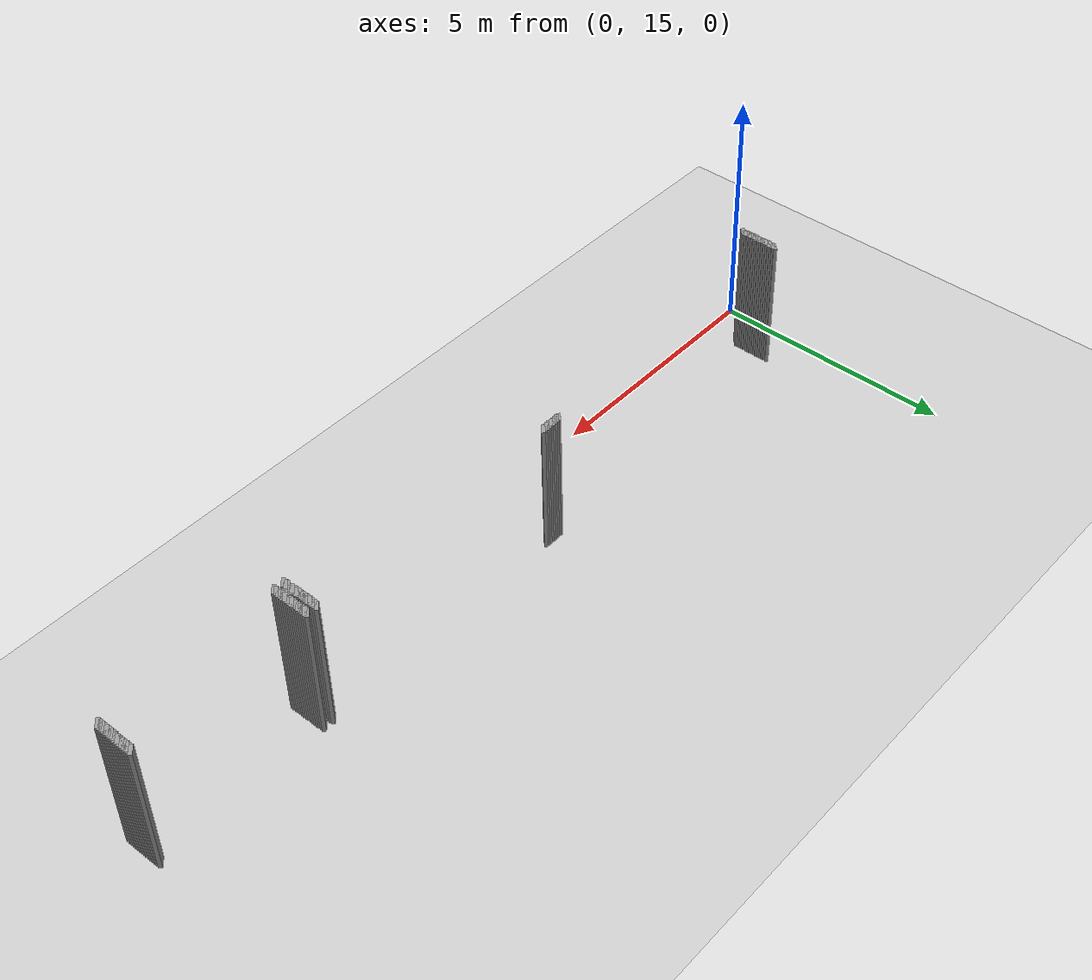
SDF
<sdf version="1.5">
 <world name="default">
  <include><uri>model://ground_plane</uri></include>
  <include><uri>model://sun</uri></include>
  <model name="grey_wall_522">
   <static>1</static>
   <link name="link">
    <pose>7.1000000000000005 16.5  1.4 0 0 -0.7853981633974128</pose>
    <collision name="collision">
     <geometry><box><size>0.07071067811865325 .2  2.8</size></box></geometry>
    </collision>
    <visual name="visual">
     <cast_shadows>0</cast_shadows>
     <geometry><box><size>0.07071067811865325 .2  2.8</size></box></geometry>
     <material>
      <script>
       <uri>model://grey_wall/materials/scripts</uri>
       <uri>model://grey_wall/materials/textures</uri>
       <name>vrc/grey_wall</name>
      </script>
     </material>
    </visual>
   </link>
  </model>
  <model name="grey_wall_523">
   <static>1</static>
   <link name="link">
    <pose>7.15 16.5  1.4 0 0 -0.7853981633974128</pose>
    <collision name="collision">
     <geometry><box><size>0.07071067811865325 .2  2.8</size></box></geometry>
    </collision>
    <visual name="visual">
     <cast_shadows>0</cast_shadows>
     <geometry><box><size>0.07071067811865325 .2  2.8</size></box></geometry>
     <material>
      <script>
       <uri>model://grey_wall/materials/scripts</uri>
       <uri>model://grey_wall/materials/textures</uri>
       <name>vrc/grey_wall</name>
      </script>
     </material>
    </visual>
   </link>
  </model>
  <model name="grey_wall_524">
   <static>1</static>
   <link name="link">
    <pose>7.2 16.5  1.4 0 0 -0.7853981633974128</pose>
    <collision name="collision">
     <geometry><box><size>0.07071067811865325 .2  2.8</size></box></geometry>
    </collision>
    <visual name="visual">
     <cast_shadows>0</cast_shadows>
     <geometry><box><size>0.07071067811865325 .2  2.8</size></box></geometry>
     <material>
      <script>
       <uri>model://grey_wall/materials/scripts</uri>
       <uri>model://grey_wall/materials/textures</uri>
       <name>vrc/grey_wall</name>
      </script>
     </material>
    </visual>
   </link>
  </model>
  <model name="grey_wall_525">
   <static>1</static>
   <link name="link">
    <pose>7.25 16.5  1.4 0 0 -0.7853981633974128</pose>
    <collision name="collision">
     <geometry><box><size>0.07071067811865325 .2  2.8</size></box></geometry>
    </collision>
    <visual name="visual">
     <cast_shadows>0</cast_shadows>
     <geometry><box><size>0.07071067811865325 .2  2.8</size></box></geometry>
     <material>
      <script>
       <uri>model://grey_wall/materials/scripts</uri>
       <uri>model://grey_wall/materials/textures</uri>
       <name>vrc/grey_wall</name>
      </script>
     </material>
    </visual>
   </link>
  </model>
  <model name="grey_wall_526">
   <static>1</static>
   <link name="link">
    <pose>7.300000000000001 16.5  1.4 0 0 -0.7853981633974128</pose>
    <collision name="collision">
     <geometry><box><size>0.07071067811865325 .2  2.8</size></box></geometry>
    </collision>
    <visual name="visual">
     <cast_shadows>0</cast_shadows>
     <geometry><box><size>0.07071067811865325 .2  2.8</size></box></geometry>
     <material>
      <script>
       <uri>model://grey_wall/materials/scripts</uri>
       <uri>model://grey_wall/materials/textures</uri>
       <name>vrc/grey_wall</name>
      </script>
     </material>
    </visual>
   </link>
  </model>
  <model name="grey_wall_527">
   <static>1</static>
   <link name="link">
    <pose>7.3500000000000005 16.5  1.4 0 0 -0.7853981633974128</pose>
    <collision name="collision">
     <geometry><box><size>0.07071067811865325 .2  2.8</size></box></geometry>
    </collision>
    <visual name="visual">
     <cast_shadows>0</cast_shadows>
     <geometry><box><size>0.07071067811865325 .2  2.8</size></box></geometry>
     <material>
      <script>
       <uri>model://grey_wall/materials/scripts</uri>
       <uri>model://grey_wall/materials/textures</uri>
       <name>vrc/grey_wall</name>
      </script>
     </material>
    </visual>
   </link>
  </model>
  <model name="grey_wall_528">
   <static>1</static>
   <link name="link">
    <pose>7.4 16.5  1.4 0 0 -0.7853981633974128</pose>
    <collision name="collision">
     <geometry><box><size>0.07071067811865325 .2  2.8</size></box></geometry>
    </collision>
    <visual name="visual">
     <cast_shadows>0</cast_shadows>
     <geometry><box><size>0.07071067811865325 .2  2.8</size></box></geometry>
     <material>
      <script>
       <uri>model://grey_wall/materials/scripts</uri>
       <uri>model://grey_wall/materials/textures</uri>
       <name>vrc/grey_wall</name>
      </script>
     </material>
    </visual>
   </link>
  </model>
  <model name="grey_wall_529">
   <static>1</static>
   <link name="link">
    <pose>7.45 16.5  1.4 0 0 -0.7853981633974128</pose>
    <collision name="collision">
     <geometry><box><size>0.07071067811865325 .2  2.8</size></box></geometry>
    </collision>
    <visual name="visual">
     <cast_shadows>0</cast_shadows>
     <geometry><box><size>0.07071067811865325 .2  2.8</size></box></geometry>
     <material>
      <script>
       <uri>model://grey_wall/materials/scripts</uri>
       <uri>model://grey_wall/materials/textures</uri>
       <name>vrc/grey_wall</name>
      </script>
     </material>
    </visual>
   </link>
  </model>
  <model name="grey_wall_530">
   <static>1</static>
   <link name="link">
    <pose>7.5 16.5  1.4 0 0 -0.7853981633974128</pose>
    <collision name="collision">
     <geometry><box><size>0.07071067811865325 .2  2.8</size></box></geometry>
    </collision>
    <visual name="visual">
     <cast_shadows>0</cast_shadows>
     <geometry><box><size>0.07071067811865325 .2  2.8</size></box></geometry>
     <material>
      <script>
       <uri>model://grey_wall/materials/scripts</uri>
       <uri>model://grey_wall/materials/textures</uri>
       <name>vrc/grey_wall</name>
      </script>
     </material>
    </visual>
   </link>
  </model>
  <model name="grey_wall_531">
   <static>1</static>
   <link name="link">
    <pose>12.8 16.5  1.4 0 0 -0.7853981633974128</pose>
    <collision name="collision">
     <geometry><box><size>0.07071067811865325 .2  2.8</size></box></geometry>
    </collision>
    <visual name="visual">
     <cast_shadows>0</cast_shadows>
     <geometry><box><size>0.07071067811865325 .2  2.8</size></box></geometry>
     <material>
      <script>
       <uri>model://grey_wall/materials/scripts</uri>
       <uri>model://grey_wall/materials/textures</uri>
       <name>vrc/grey_wall</name>
      </script>
     </material>
    </visual>
   </link>
  </model>
  <model name="grey_wall_532">
   <static>1</static>
   <link name="link">
    <pose>13.0 16.5  1.4 0 0 -0.7853981633974128</pose>
    <collision name="collision">
     <geometry><box><size>0.07071067811865325 .2  2.8</size></box></geometry>
    </collision>
    <visual name="visual">
     <cast_shadows>0</cast_shadows>
     <geometry><box><size>0.07071067811865325 .2  2.8</size></box></geometry>
     <material>
      <script>
       <uri>model://grey_wall/materials/scripts</uri>
       <uri>model://grey_wall/materials/textures</uri>
       <name>vrc/grey_wall</name>
      </script>
     </material>
    </visual>
   </link>
  </model>
  <model name="grey_wall_533">
   <static>1</static>
   <link name="link">
    <pose>16.45 16.5  1.4 0 0 -0.7853981633974483</pose>
    <collision name="collision">
     <geometry><box><size>0.07071067811865074 .2  2.8</size></box></geometry>
    </collision>
    <visual name="visual">
     <cast_shadows>0</cast_shadows>
     <geometry><box><size>0.07071067811865074 .2  2.8</size></box></geometry>
     <material>
      <script>
       <uri>model://grey_wall/materials/scripts</uri>
       <uri>model://grey_wall/materials/textures</uri>
       <name>vrc/grey_wall</name>
      </script>
     </material>
    </visual>
   </link>
  </model>
  <model name="grey_wall_534">
   <static>1</static>
   <link name="link">
    <pose>0.75 16.45  1.4 0 0 -0.7853981633974194</pose>
    <collision name="collision">
     <geometry><box><size>0.07071067811865277 .2  2.8</size></box></geometry>
    </collision>
    <visual name="visual">
     <cast_shadows>0</cast_shadows>
     <geometry><box><size>0.07071067811865277 .2  2.8</size></box></geometry>
     <material>
      <script>
       <uri>model://grey_wall/materials/scripts</uri>
       <uri>model://grey_wall/materials/textures</uri>
       <name>vrc/grey_wall</name>
      </script>
     </material>
    </visual>
   </link>
  </model>
  <model name="grey_wall_535">
   <static>1</static>
   <link name="link">
    <pose>12.8 16.45  1.4 0 0 -0.7853981633974128</pose>
    <collision name="collision">
     <geometry><box><size>0.07071067811865325 .2  2.8</size></box></geometry>
    </collision>
    <visual name="visual">
     <cast_shadows>0</cast_shadows>
     <geometry><box><size>0.07071067811865325 .2  2.8</size></box></geometry>
     <material>
      <script>
       <uri>model://grey_wall/materials/scripts</uri>
       <uri>model://grey_wall/materials/textures</uri>
       <name>vrc/grey_wall</name>
      </script>
     </material>
    </visual>
   </link>
  </model>
  <model name="grey_wall_536">
   <static>1</static>
   <link name="link">
    <pose>13.0 16.45  1.4 0 0 -0.7853981633974128</pose>
    <collision name="collision">
     <geometry><box><size>0.07071067811865325 .2  2.8</size></box></geometry>
    </collision>
    <visual name="visual">
     <cast_shadows>0</cast_shadows>
     <geometry><box><size>0.07071067811865325 .2  2.8</size></box></geometry>
     <material>
      <script>
       <uri>model://grey_wall/materials/scripts</uri>
       <uri>model://grey_wall/materials/textures</uri>
       <name>vrc/grey_wall</name>
      </script>
     </material>
    </visual>
   </link>
  </model>
  <model name="grey_wall_537">
   <static>1</static>
   <link name="link">
    <pose>16.45 16.45  1.4 0 0 -0.7853981633974483</pose>
    <collision name="collision">
     <geometry><box><size>0.07071067811865074 .2  2.8</size></box></geometry>
    </collision>
    <visual name="visual">
     <cast_shadows>0</cast_shadows>
     <geometry><box><size>0.07071067811865074 .2  2.8</size></box></geometry>
     <material>
      <script>
       <uri>model://grey_wall/materials/scripts</uri>
       <uri>model://grey_wall/materials/textures</uri>
       <name>vrc/grey_wall</name>
      </script>
     </material>
    </visual>
   </link>
  </model>
  <model name="grey_wall_538">
   <static>1</static>
   <link name="link">
    <pose>0.75 16.400000000000002  1.4 0 0 -0.7853981633974194</pose>
    <collision name="collision">
     <geometry><box><size>0.07071067811865277 .2  2.8</size></box></geometry>
    </collision>
    <visual name="visual">
     <cast_shadows>0</cast_shadows>
     <geometry><box><size>0.07071067811865277 .2  2.8</size></box></geometry>
     <material>
      <script>
       <uri>model://grey_wall/materials/scripts</uri>
       <uri>model://grey_wall/materials/textures</uri>
       <name>vrc/grey_wall</name>
      </script>
     </material>
    </visual>
   </link>
  </model>
  <model name="grey_wall_539">
   <static>1</static>
   <link name="link">
    <pose>12.8 16.400000000000002  1.4 0 0 -0.7853981633974128</pose>
    <collision name="collision">
     <geometry><box><size>0.07071067811865325 .2  2.8</size></box></geometry>
    </collision>
    <visual name="visual">
     <cast_shadows>0</cast_shadows>
     <geometry><box><size>0.07071067811865325 .2  2.8</size></box></geometry>
     <material>
      <script>
       <uri>model://grey_wall/materials/scripts</uri>
       <uri>model://grey_wall/materials/textures</uri>
       <name>vrc/grey_wall</name>
      </script>
     </material>
    </visual>
   </link>
  </model>
  <model name="grey_wall_540">
   <static>1</static>
   <link name="link">
    <pose>13.0 16.400000000000002  1.4 0 0 -0.7853981633974128</pose>
    <collision name="collision">
     <geometry><box><size>0.07071067811865325 .2  2.8</size></box></geometry>
    </collision>
    <visual name="visual">
     <cast_shadows>0</cast_shadows>
     <geometry><box><size>0.07071067811865325 .2  2.8</size></box></geometry>
     <material>
      <script>
       <uri>model://grey_wall/materials/scripts</uri>
       <uri>model://grey_wall/materials/textures</uri>
       <name>vrc/grey_wall</name>
      </script>
     </material>
    </visual>
   </link>
  </model>
  <model name="grey_wall_541">
   <static>1</static>
   <link name="link">
    <pose>16.45 16.400000000000002  1.4 0 0 -0.7853981633974483</pose>
    <collision name="collision">
     <geometry><box><size>0.07071067811865074 .2  2.8</size></box></geometry>
    </collision>
    <visual name="visual">
     <cast_shadows>0</cast_shadows>
     <geometry><box><size>0.07071067811865074 .2  2.8</size></box></geometry>
     <material>
      <script>
       <uri>model://grey_wall/materials/scripts</uri>
       <uri>model://grey_wall/materials/textures</uri>
       <name>vrc/grey_wall</name>
      </script>
     </material>
    </visual>
   </link>
  </model>
  <model name="grey_wall_542">
   <static>1</static>
   <link name="link">
    <pose>0.75 16.35  1.4 0 0 -0.7853981633974194</pose>
    <collision name="collision">
     <geometry><box><size>0.07071067811865277 .2  2.8</size></box></geometry>
    </collision>
    <visual name="visual">
     <cast_shadows>0</cast_shadows>
     <geometry><box><size>0.07071067811865277 .2  2.8</size></box></geometry>
     <material>
      <script>
       <uri>model://grey_wall/materials/scripts</uri>
       <uri>model://grey_wall/materials/textures</uri>
       <name>vrc/grey_wall</name>
      </script>
     </material>
    </visual>
   </link>
  </model>
  <model name="grey_wall_543">
   <static>1</static>
   <link name="link">
    <pose>12.8 16.35  1.4 0 0 -0.7853981633974128</pose>
    <collision name="collision">
     <geometry><box><size>0.07071067811865325 .2  2.8</size></box></geometry>
    </collision>
    <visual name="visual">
     <cast_shadows>0</cast_shadows>
     <geometry><box><size>0.07071067811865325 .2  2.8</size></box></geometry>
     <material>
      <script>
       <uri>model://grey_wall/materials/scripts</uri>
       <uri>model://grey_wall/materials/textures</uri>
       <name>vrc/grey_wall</name>
      </script>
     </material>
    </visual>
   </link>
  </model>
  <model name="grey_wall_544">
   <static>1</static>
   <link name="link">
    <pose>13.0 16.35  1.4 0 0 -0.7853981633974128</pose>
    <collision name="collision">
     <geometry><box><size>0.07071067811865325 .2  2.8</size></box></geometry>
    </collision>
    <visual name="visual">
     <cast_shadows>0</cast_shadows>
     <geometry><box><size>0.07071067811865325 .2  2.8</size></box></geometry>
     <material>
      <script>
       <uri>model://grey_wall/materials/scripts</uri>
       <uri>model://grey_wall/materials/textures</uri>
       <name>vrc/grey_wall</name>
      </script>
     </material>
    </visual>
   </link>
  </model>
  <model name="grey_wall_545">
   <static>1</static>
   <link name="link">
    <pose>16.45 16.35  1.4 0 0 -0.7853981633974483</pose>
    <collision name="collision">
     <geometry><box><size>0.07071067811865074 .2  2.8</size></box></geometry>
    </collision>
    <visual name="visual">
     <cast_shadows>0</cast_shadows>
     <geometry><box><size>0.07071067811865074 .2  2.8</size></box></geometry>
     <material>
      <script>
       <uri>model://grey_wall/materials/scripts</uri>
       <uri>model://grey_wall/materials/textures</uri>
       <name>vrc/grey_wall</name>
      </script>
     </material>
    </visual>
   </link>
  </model>
  <model name="grey_wall_546">
   <static>1</static>
   <link name="link">
    <pose>0.75 16.3  1.4 0 0 -0.7853981633974194</pose>
    <collision name="collision">
     <geometry><box><size>0.07071067811865277 .2  2.8</size></box></geometry>
    </collision>
    <visual name="visual">
     <cast_shadows>0</cast_shadows>
     <geometry><box><size>0.07071067811865277 .2  2.8</size></box></geometry>
     <material>
      <script>
       <uri>model://grey_wall/materials/scripts</uri>
       <uri>model://grey_wall/materials/textures</uri>
       <name>vrc/grey_wall</name>
      </script>
     </material>
    </visual>
   </link>
  </model>
  <model name="grey_wall_547">
   <static>1</static>
   <link name="link">
    <pose>12.8 16.3  1.4 0 0 -0.7853981633974128</pose>
    <collision name="collision">
     <geometry><box><size>0.07071067811865325 .2  2.8</size></box></geometry>
    </collision>
    <visual name="visual">
     <cast_shadows>0</cast_shadows>
     <geometry><box><size>0.07071067811865325 .2  2.8</size></box></geometry>
     <material>
      <script>
       <uri>model://grey_wall/materials/scripts</uri>
       <uri>model://grey_wall/materials/textures</uri>
       <name>vrc/grey_wall</name>
      </script>
     </material>
    </visual>
   </link>
  </model>
  <model name="grey_wall_548">
   <static>1</static>
   <link name="link">
    <pose>13.0 16.3  1.4 0 0 -0.7853981633974128</pose>
    <collision name="collision">
     <geometry><box><size>0.07071067811865325 .2  2.8</size></box></geometry>
    </collision>
    <visual name="visual">
     <cast_shadows>0</cast_shadows>
     <geometry><box><size>0.07071067811865325 .2  2.8</size></box></geometry>
     <material>
      <script>
       <uri>model://grey_wall/materials/scripts</uri>
       <uri>model://grey_wall/materials/textures</uri>
       <name>vrc/grey_wall</name>
      </script>
     </material>
    </visual>
   </link>
  </model>
  <model name="grey_wall_549">
   <static>1</static>
   <link name="link">
    <pose>16.45 16.3  1.4 0 0 -0.7853981633974483</pose>
    <collision name="collision">
     <geometry><box><size>0.07071067811865074 .2  2.8</size></box></geometry>
    </collision>
    <visual name="visual">
     <cast_shadows>0</cast_shadows>
     <geometry><box><size>0.07071067811865074 .2  2.8</size></box></geometry>
     <material>
      <script>
       <uri>model://grey_wall/materials/scripts</uri>
       <uri>model://grey_wall/materials/textures</uri>
       <name>vrc/grey_wall</name>
      </script>
     </material>
    </visual>
   </link>
  </model>
  <model name="grey_wall_550">
   <static>1</static>
   <link name="link">
    <pose>0.75 16.25  1.4 0 0 -0.7853981633974194</pose>
    <collision name="collision">
     <geometry><box><size>0.07071067811865277 .2  2.8</size></box></geometry>
    </collision>
    <visual name="visual">
     <cast_shadows>0</cast_shadows>
     <geometry><box><size>0.07071067811865277 .2  2.8</size></box></geometry>
     <material>
      <script>
       <uri>model://grey_wall/materials/scripts</uri>
       <uri>model://grey_wall/materials/textures</uri>
       <name>vrc/grey_wall</name>
      </script>
     </material>
    </visual>
   </link>
  </model>
  <model name="grey_wall_551">
   <static>1</static>
   <link name="link">
    <pose>12.8 16.25  1.4 0 0 -0.7853981633974128</pose>
    <collision name="collision">
     <geometry><box><size>0.07071067811865325 .2  2.8</size></box></geometry>
    </collision>
    <visual name="visual">
     <cast_shadows>0</cast_shadows>
     <geometry><box><size>0.07071067811865325 .2  2.8</size></box></geometry>
     <material>
      <script>
       <uri>model://grey_wall/materials/scripts</uri>
       <uri>model://grey_wall/materials/textures</uri>
       <name>vrc/grey_wall</name>
      </script>
     </material>
    </visual>
   </link>
  </model>
  <model name="grey_wall_552">
   <static>1</static>
   <link name="link">
    <pose>13.0 16.25  1.4 0 0 -0.7853981633974128</pose>
    <collision name="collision">
     <geometry><box><size>0.07071067811865325 .2  2.8</size></box></geometry>
    </collision>
    <visual name="visual">
     <cast_shadows>0</cast_shadows>
     <geometry><box><size>0.07071067811865325 .2  2.8</size></box></geometry>
     <material>
      <script>
       <uri>model://grey_wall/materials/scripts</uri>
       <uri>model://grey_wall/materials/textures</uri>
       <name>vrc/grey_wall</name>
      </script>
     </material>
    </visual>
   </link>
  </model>
  <model name="grey_wall_553">
   <static>1</static>
   <link name="link">
    <pose>16.45 16.25  1.4 0 0 -0.7853981633974483</pose>
    <collision name="collision">
     <geometry><box><size>0.07071067811865074 .2  2.8</size></box></geometry>
    </collision>
    <visual name="visual">
     <cast_shadows>0</cast_shadows>
     <geometry><box><size>0.07071067811865074 .2  2.8</size></box></geometry>
     <material>
      <script>
       <uri>model://grey_wall/materials/scripts</uri>
       <uri>model://grey_wall/materials/textures</uri>
       <name>vrc/grey_wall</name>
      </script>
     </material>
    </visual>
   </link>
  </model>
  <model name="grey_wall_554">
   <static>1</static>
   <link name="link">
    <pose>0.75 16.2  1.4 0 0 -0.7853981633974194</pose>
    <collision name="collision">
     <geometry><box><size>0.07071067811865277 .2  2.8</size></box></geometry>
    </collision>
    <visual name="visual">
     <cast_shadows>0</cast_shadows>
     <geometry><box><size>0.07071067811865277 .2  2.8</size></box></geometry>
     <material>
      <script>
       <uri>model://grey_wall/materials/scripts</uri>
       <uri>model://grey_wall/materials/textures</uri>
       <name>vrc/grey_wall</name>
      </script>
     </material>
    </visual>
   </link>
  </model>
  <model name="grey_wall_555">
   <static>1</static>
   <link name="link">
    <pose>12.8 16.2  1.4 0 0 -0.7853981633974128</pose>
    <collision name="collision">
     <geometry><box><size>0.07071067811865325 .2  2.8</size></box></geometry>
    </collision>
    <visual name="visual">
     <cast_shadows>0</cast_shadows>
     <geometry><box><size>0.07071067811865325 .2  2.8</size></box></geometry>
     <material>
      <script>
       <uri>model://grey_wall/materials/scripts</uri>
       <uri>model://grey_wall/materials/textures</uri>
       <name>vrc/grey_wall</name>
      </script>
     </material>
    </visual>
   </link>
  </model>
  <model name="grey_wall_556">
   <static>1</static>
   <link name="link">
    <pose>13.0 16.2  1.4 0 0 -0.7853981633974128</pose>
    <collision name="collision">
     <geometry><box><size>0.07071067811865325 .2  2.8</size></box></geometry>
    </collision>
    <visual name="visual">
     <cast_shadows>0</cast_shadows>
     <geometry><box><size>0.07071067811865325 .2  2.8</size></box></geometry>
     <material>
      <script>
       <uri>model://grey_wall/materials/scripts</uri>
       <uri>model://grey_wall/materials/textures</uri>
       <name>vrc/grey_wall</name>
      </script>
     </material>
    </visual>
   </link>
  </model>
  <model name="grey_wall_557">
   <static>1</static>
   <link name="link">
    <pose>16.45 16.2  1.4 0 0 -0.7853981633974483</pose>
    <collision name="collision">
     <geometry><box><size>0.07071067811865074 .2  2.8</size></box></geometry>
    </collision>
    <visual name="visual">
     <cast_shadows>0</cast_shadows>
     <geometry><box><size>0.07071067811865074 .2  2.8</size></box></geometry>
     <material>
      <script>
       <uri>model://grey_wall/materials/scripts</uri>
       <uri>model://grey_wall/materials/textures</uri>
       <name>vrc/grey_wall</name>
      </script>
     </material>
    </visual>
   </link>
  </model>
  <model name="grey_wall_558">
   <static>1</static>
   <link name="link">
    <pose>0.75 16.150000000000002  1.4 0 0 -0.7853981633974194</pose>
    <collision name="collision">
     <geometry><box><size>0.07071067811865277 .2  2.8</size></box></geometry>
    </collision>
    <visual name="visual">
     <cast_shadows>0</cast_shadows>
     <geometry><box><size>0.07071067811865277 .2  2.8</size></box></geometry>
     <material>
      <script>
       <uri>model://grey_wall/materials/scripts</uri>
       <uri>model://grey_wall/materials/textures</uri>
       <name>vrc/grey_wall</name>
      </script>
     </material>
    </visual>
   </link>
  </model>
  <model name="grey_wall_559">
   <static>1</static>
   <link name="link">
    <pose>12.8 16.150000000000002  1.4 0 0 -0.7853981633974128</pose>
    <collision name="collision">
     <geometry><box><size>0.07071067811865325 .2  2.8</size></box></geometry>
    </collision>
    <visual name="visual">
     <cast_shadows>0</cast_shadows>
     <geometry><box><size>0.07071067811865325 .2  2.8</size></box></geometry>
     <material>
      <script>
       <uri>model://grey_wall/materials/scripts</uri>
       <uri>model://grey_wall/materials/textures</uri>
       <name>vrc/grey_wall</name>
      </script>
     </material>
    </visual>
   </link>
  </model>
  <model name="grey_wall_560">
   <static>1</static>
   <link name="link">
    <pose>13.0 16.150000000000002  1.4 0 0 -0.7853981633974128</pose>
    <collision name="collision">
     <geometry><box><size>0.07071067811865325 .2  2.8</size></box></geometry>
    </collision>
    <visual name="visual">
     <cast_shadows>0</cast_shadows>
     <geometry><box><size>0.07071067811865325 .2  2.8</size></box></geometry>
     <material>
      <script>
       <uri>model://grey_wall/materials/scripts</uri>
       <uri>model://grey_wall/materials/textures</uri>
       <name>vrc/grey_wall</name>
      </script>
     </material>
    </visual>
   </link>
  </model>
  <model name="grey_wall_561">
   <static>1</static>
   <link name="link">
    <pose>16.45 16.150000000000002  1.4 0 0 -0.7853981633974483</pose>
    <collision name="collision">
     <geometry><box><size>0.07071067811865074 .2  2.8</size></box></geometry>
    </collision>
    <visual name="visual">
     <cast_shadows>0</cast_shadows>
     <geometry><box><size>0.07071067811865074 .2  2.8</size></box></geometry>
     <material>
      <script>
       <uri>model://grey_wall/materials/scripts</uri>
       <uri>model://grey_wall/materials/textures</uri>
       <name>vrc/grey_wall</name>
      </script>
     </material>
    </visual>
   </link>
  </model>
  <model name="grey_wall_562">
   <static>1</static>
   <link name="link">
    <pose>0.75 16.1  1.4 0 0 -0.7853981633974194</pose>
    <collision name="collision">
     <geometry><box><size>0.07071067811865277 .2  2.8</size></box></geometry>
    </collision>
    <visual name="visual">
     <cast_shadows>0</cast_shadows>
     <geometry><box><size>0.07071067811865277 .2  2.8</size></box></geometry>
     <material>
      <script>
       <uri>model://grey_wall/materials/scripts</uri>
       <uri>model://grey_wall/materials/textures</uri>
       <name>vrc/grey_wall</name>
      </script>
     </material>
    </visual>
   </link>
  </model>
  <model name="grey_wall_563">
   <static>1</static>
   <link name="link">
    <pose>12.8 16.1  1.4 0 0 -0.7853981633974128</pose>
    <collision name="collision">
     <geometry><box><size>0.07071067811865325 .2  2.8</size></box></geometry>
    </collision>
    <visual name="visual">
     <cast_shadows>0</cast_shadows>
     <geometry><box><size>0.07071067811865325 .2  2.8</size></box></geometry>
     <material>
      <script>
       <uri>model://grey_wall/materials/scripts</uri>
       <uri>model://grey_wall/materials/textures</uri>
       <name>vrc/grey_wall</name>
      </script>
     </material>
    </visual>
   </link>
  </model>
  <model name="grey_wall_564">
   <static>1</static>
   <link name="link">
    <pose>13.0 16.1  1.4 0 0 -0.7853981633974128</pose>
    <collision name="collision">
     <geometry><box><size>0.07071067811865325 .2  2.8</size></box></geometry>
    </collision>
    <visual name="visual">
     <cast_shadows>0</cast_shadows>
     <geometry><box><size>0.07071067811865325 .2  2.8</size></box></geometry>
     <material>
      <script>
       <uri>model://grey_wall/materials/scripts</uri>
       <uri>model://grey_wall/materials/textures</uri>
       <name>vrc/grey_wall</name>
      </script>
     </material>
    </visual>
   </link>
  </model>
  <model name="grey_wall_565">
   <static>1</static>
   <link name="link">
    <pose>16.45 16.1  1.4 0 0 -0.7853981633974483</pose>
    <collision name="collision">
     <geometry><box><size>0.07071067811865074 .2  2.8</size></box></geometry>
    </collision>
    <visual name="visual">
     <cast_shadows>0</cast_shadows>
     <geometry><box><size>0.07071067811865074 .2  2.8</size></box></geometry>
     <material>
      <script>
       <uri>model://grey_wall/materials/scripts</uri>
       <uri>model://grey_wall/materials/textures</uri>
       <name>vrc/grey_wall</name>
      </script>
     </material>
    </visual>
   </link>
  </model>
  <model name="grey_wall_566">
   <static>1</static>
   <link name="link">
    <pose>0.75 16.05  1.4 0 0 -0.7853981633974194</pose>
    <collision name="collision">
     <geometry><box><size>0.07071067811865277 .2  2.8</size></box></geometry>
    </collision>
    <visual name="visual">
     <cast_shadows>0</cast_shadows>
     <geometry><box><size>0.07071067811865277 .2  2.8</size></box></geometry>
     <material>
      <script>
       <uri>model://grey_wall/materials/scripts</uri>
       <uri>model://grey_wall/materials/textures</uri>
       <name>vrc/grey_wall</name>
      </script>
     </material>
    </visual>
   </link>
  </model>
  <model name="grey_wall_567">
   <static>1</static>
   <link name="link">
    <pose>12.8 16.05  1.4 0 0 -0.7853981633974128</pose>
    <collision name="collision">
     <geometry><box><size>0.07071067811865325 .2  2.8</size></box></geometry>
    </collision>
    <visual name="visual">
     <cast_shadows>0</cast_shadows>
     <geometry><box><size>0.07071067811865325 .2  2.8</size></box></geometry>
     <material>
      <script>
       <uri>model://grey_wall/materials/scripts</uri>
       <uri>model://grey_wall/materials/textures</uri>
       <name>vrc/grey_wall</name>
      </script>
     </material>
    </visual>
   </link>
  </model>
  <model name="grey_wall_568">
   <static>1</static>
   <link name="link">
    <pose>13.0 16.05  1.4 0 0 -0.7853981633974128</pose>
    <collision name="collision">
     <geometry><box><size>0.07071067811865325 .2  2.8</size></box></geometry>
    </collision>
    <visual name="visual">
     <cast_shadows>0</cast_shadows>
     <geometry><box><size>0.07071067811865325 .2  2.8</size></box></geometry>
     <material>
      <script>
       <uri>model://grey_wall/materials/scripts</uri>
       <uri>model://grey_wall/materials/textures</uri>
       <name>vrc/grey_wall</name>
      </script>
     </material>
    </visual>
   </link>
  </model>
  <model name="grey_wall_569">
   <static>1</static>
   <link name="link">
    <pose>16.45 16.05  1.4 0 0 -0.7853981633974483</pose>
    <collision name="collision">
     <geometry><box><size>0.07071067811865074 .2  2.8</size></box></geometry>
    </collision>
    <visual name="visual">
     <cast_shadows>0</cast_shadows>
     <geometry><box><size>0.07071067811865074 .2  2.8</size></box></geometry>
     <material>
      <script>
       <uri>model://grey_wall/materials/scripts</uri>
       <uri>model://grey_wall/materials/textures</uri>
       <name>vrc/grey_wall</name>
      </script>
     </material>
    </visual>
   </link>
  </model>
  <model name="grey_wall_570">
   <static>1</static>
   <link name="link">
    <pose>0.75 16.0  1.4 0 0 -0.7853981633974372</pose>
    <collision name="collision">
     <geometry><box><size>0.07071067811865403 .2  2.8</size></box></geometry>
    </collision>
    <visual name="visual">
     <cast_shadows>0</cast_shadows>
     <geometry><box><size>0.07071067811865403 .2  2.8</size></box></geometry>
     <material>
      <script>
       <uri>model://grey_wall/materials/scripts</uri>
       <uri>model://grey_wall/materials/textures</uri>
       <name>vrc/grey_wall</name>
      </script>
     </material>
    </visual>
   </link>
  </model>
  <model name="grey_wall_571">
   <static>1</static>
   <link name="link">
    <pose>12.8 16.0  1.4 0 0 -0.7853981633974305</pose>
    <collision name="collision">
     <geometry><box><size>0.0707106781186545 .2  2.8</size></box></geometry>
    </collision>
    <visual name="visual">
     <cast_shadows>0</cast_shadows>
     <geometry><box><size>0.0707106781186545 .2  2.8</size></box></geometry>
     <material>
      <script>
       <uri>model://grey_wall/materials/scripts</uri>
       <uri>model://grey_wall/materials/textures</uri>
       <name>vrc/grey_wall</name>
      </script>
     </material>
    </visual>
   </link>
  </model>
  <model name="grey_wall_572">
   <static>1</static>
   <link name="link">
    <pose>13.0 16.0  1.4 0 0 -0.7853981633974305</pose>
    <collision name="collision">
     <geometry><box><size>0.0707106781186545 .2  2.8</size></box></geometry>
    </collision>
    <visual name="visual">
     <cast_shadows>0</cast_shadows>
     <geometry><box><size>0.0707106781186545 .2  2.8</size></box></geometry>
     <material>
      <script>
       <uri>model://grey_wall/materials/scripts</uri>
       <uri>model://grey_wall/materials/textures</uri>
       <name>vrc/grey_wall</name>
      </script>
     </material>
    </visual>
   </link>
  </model>
  <model name="grey_wall_573">
   <static>1</static>
   <link name="link">
    <pose>16.45 16.0  1.4 0 0 -0.785398163397466</pose>
    <collision name="collision">
     <geometry><box><size>0.07071067811865199 .2  2.8</size></box></geometry>
    </collision>
    <visual name="visual">
     <cast_shadows>0</cast_shadows>
     <geometry><box><size>0.07071067811865199 .2  2.8</size></box></geometry>
     <material>
      <script>
       <uri>model://grey_wall/materials/scripts</uri>
       <uri>model://grey_wall/materials/textures</uri>
       <name>vrc/grey_wall</name>
      </script>
     </material>
    </visual>
   </link>
  </model>
  <model name="grey_wall_574">
   <static>1</static>
   <link name="link">
    <pose>0.75 15.950000000000001  1.4 0 0 -0.7853981633974549</pose>
    <collision name="collision">
     <geometry><box><size>0.07071067811865529 .2  2.8</size></box></geometry>
    </collision>
    <visual name="visual">
     <cast_shadows>0</cast_shadows>
     <geometry><box><size>0.07071067811865529 .2  2.8</size></box></geometry>
     <material>
      <script>
       <uri>model://grey_wall/materials/scripts</uri>
       <uri>model://grey_wall/materials/textures</uri>
       <name>vrc/grey_wall</name>
      </script>
     </material>
    </visual>
   </link>
  </model>
  <model name="grey_wall_575">
   <static>1</static>
   <link name="link">
    <pose>12.8 15.950000000000001  1.4 0 0 -0.7853981633974483</pose>
    <collision name="collision">
     <geometry><box><size>0.07071067811865576 .2  2.8</size></box></geometry>
    </collision>
    <visual name="visual">
     <cast_shadows>0</cast_shadows>
     <geometry><box><size>0.07071067811865576 .2  2.8</size></box></geometry>
     <material>
      <script>
       <uri>model://grey_wall/materials/scripts</uri>
       <uri>model://grey_wall/materials/textures</uri>
       <name>vrc/grey_wall</name>
      </script>
     </material>
    </visual>
   </link>
  </model>
  <model name="grey_wall_576">
   <static>1</static>
   <link name="link">
    <pose>12.850000000000001 15.950000000000001  1.4 0 0 -0.7853981633974483</pose>
    <collision name="collision">
     <geometry><box><size>0.07071067811865576 .2  2.8</size></box></geometry>
    </collision>
    <visual name="visual">
     <cast_shadows>0</cast_shadows>
     <geometry><box><size>0.07071067811865576 .2  2.8</size></box></geometry>
     <material>
      <script>
       <uri>model://grey_wall/materials/scripts</uri>
       <uri>model://grey_wall/materials/textures</uri>
       <name>vrc/grey_wall</name>
      </script>
     </material>
    </visual>
   </link>
  </model>
  <model name="grey_wall_577">
   <static>1</static>
   <link name="link">
    <pose>13.0 15.950000000000001  1.4 0 0 -0.7853981633974483</pose>
    <collision name="collision">
     <geometry><box><size>0.07071067811865576 .2  2.8</size></box></geometry>
    </collision>
    <visual name="visual">
     <cast_shadows>0</cast_shadows>
     <geometry><box><size>0.07071067811865576 .2  2.8</size></box></geometry>
     <material>
      <script>
       <uri>model://grey_wall/materials/scripts</uri>
       <uri>model://grey_wall/materials/textures</uri>
       <name>vrc/grey_wall</name>
      </script>
     </material>
    </visual>
   </link>
  </model>
  <model name="grey_wall_578">
   <static>1</static>
   <link name="link">
    <pose>16.45 15.950000000000001  1.4 0 0 -0.7853981633974838</pose>
    <collision name="collision">
     <geometry><box><size>0.07071067811865325 .2  2.8</size></box></geometry>
    </collision>
    <visual name="visual">
     <cast_shadows>0</cast_shadows>
     <geometry><box><size>0.07071067811865325 .2  2.8</size></box></geometry>
     <material>
      <script>
       <uri>model://grey_wall/materials/scripts</uri>
       <uri>model://grey_wall/materials/textures</uri>
       <name>vrc/grey_wall</name>
      </script>
     </material>
    </visual>
   </link>
  </model>
  <model name="grey_wall_579">
   <static>1</static>
   <link name="link">
    <pose>0.75 15.9  1.4 0 0 -0.7853981633974549</pose>
    <collision name="collision">
     <geometry><box><size>0.07071067811865529 .2  2.8</size></box></geometry>
    </collision>
    <visual name="visual">
     <cast_shadows>0</cast_shadows>
     <geometry><box><size>0.07071067811865529 .2  2.8</size></box></geometry>
     <material>
      <script>
       <uri>model://grey_wall/materials/scripts</uri>
       <uri>model://grey_wall/materials/textures</uri>
       <name>vrc/grey_wall</name>
      </script>
     </material>
    </visual>
   </link>
  </model>
  <model name="grey_wall_580">
   <static>1</static>
   <link name="link">
    <pose>12.850000000000001 15.9  1.4 0 0 -0.7853981633974483</pose>
    <collision name="collision">
     <geometry><box><size>0.07071067811865576 .2  2.8</size></box></geometry>
    </collision>
    <visual name="visual">
     <cast_shadows>0</cast_shadows>
     <geometry><box><size>0.07071067811865576 .2  2.8</size></box></geometry>
     <material>
      <script>
       <uri>model://grey_wall/materials/scripts</uri>
       <uri>model://grey_wall/materials/textures</uri>
       <name>vrc/grey_wall</name>
      </script>
     </material>
    </visual>
   </link>
  </model>
  <model name="grey_wall_581">
   <static>1</static>
   <link name="link">
    <pose>13.0 15.9  1.4 0 0 -0.7853981633974483</pose>
    <collision name="collision">
     <geometry><box><size>0.07071067811865576 .2  2.8</size></box></geometry>
    </collision>
    <visual name="visual">
     <cast_shadows>0</cast_shadows>
     <geometry><box><size>0.07071067811865576 .2  2.8</size></box></geometry>
     <material>
      <script>
       <uri>model://grey_wall/materials/scripts</uri>
       <uri>model://grey_wall/materials/textures</uri>
       <name>vrc/grey_wall</name>
      </script>
     </material>
    </visual>
   </link>
  </model>
  <model name="grey_wall_582">
   <static>1</static>
   <link name="link">
    <pose>16.45 15.9  1.4 0 0 -0.7853981633974838</pose>
    <collision name="collision">
     <geometry><box><size>0.07071067811865325 .2  2.8</size></box></geometry>
    </collision>
    <visual name="visual">
     <cast_shadows>0</cast_shadows>
     <geometry><box><size>0.07071067811865325 .2  2.8</size></box></geometry>
     <material>
      <script>
       <uri>model://grey_wall/materials/scripts</uri>
       <uri>model://grey_wall/materials/textures</uri>
       <name>vrc/grey_wall</name>
      </script>
     </material>
    </visual>
   </link>
  </model>
  <model name="grey_wall_583">
   <static>1</static>
   <link name="link">
    <pose>0.75 15.850000000000001  1.4 0 0 -0.7853981633974549</pose>
    <collision name="collision">
     <geometry><box><size>0.07071067811865529 .2  2.8</size></box></geometry>
    </collision>
    <visual name="visual">
     <cast_shadows>0</cast_shadows>
     <geometry><box><size>0.07071067811865529 .2  2.8</size></box></geometry>
     <material>
      <script>
       <uri>model://grey_wall/materials/scripts</uri>
       <uri>model://grey_wall/materials/textures</uri>
       <name>vrc/grey_wall</name>
      </script>
     </material>
    </visual>
   </link>
  </model>
  <model name="grey_wall_584">
   <static>1</static>
   <link name="link">
    <pose>12.8 15.850000000000001  1.4 0 0 -0.7853981633974483</pose>
    <collision name="collision">
     <geometry><box><size>0.07071067811865576 .2  2.8</size></box></geometry>
    </collision>
    <visual name="visual">
     <cast_shadows>0</cast_shadows>
     <geometry><box><size>0.07071067811865576 .2  2.8</size></box></geometry>
     <material>
      <script>
       <uri>model://grey_wall/materials/scripts</uri>
       <uri>model://grey_wall/materials/textures</uri>
       <name>vrc/grey_wall</name>
      </script>
     </material>
    </visual>
   </link>
  </model>
  <model name="grey_wall_585">
   <static>1</static>
   <link name="link">
    <pose>12.850000000000001 15.850000000000001  1.4 0 0 -0.7853981633974483</pose>
    <collision name="collision">
     <geometry><box><size>0.07071067811865576 .2  2.8</size></box></geometry>
    </collision>
    <visual name="visual">
     <cast_shadows>0</cast_shadows>
     <geometry><box><size>0.07071067811865576 .2  2.8</size></box></geometry>
     <material>
      <script>
       <uri>model://grey_wall/materials/scripts</uri>
       <uri>model://grey_wall/materials/textures</uri>
       <name>vrc/grey_wall</name>
      </script>
     </material>
    </visual>
   </link>
  </model>
  <model name="grey_wall_586">
   <static>1</static>
   <link name="link">
    <pose>13.0 15.850000000000001  1.4 0 0 -0.7853981633974483</pose>
    <collision name="collision">
     <geometry><box><size>0.07071067811865576 .2  2.8</size></box></geometry>
    </collision>
    <visual name="visual">
     <cast_shadows>0</cast_shadows>
     <geometry><box><size>0.07071067811865576 .2  2.8</size></box></geometry>
     <material>
      <script>
       <uri>model://grey_wall/materials/scripts</uri>
       <uri>model://grey_wall/materials/textures</uri>
       <name>vrc/grey_wall</name>
      </script>
     </material>
    </visual>
   </link>
  </model>
  <model name="grey_wall_587">
   <static>1</static>
   <link name="link">
    <pose>16.45 15.850000000000001  1.4 0 0 -0.7853981633974838</pose>
    <collision name="collision">
     <geometry><box><size>0.07071067811865325 .2  2.8</size></box></geometry>
    </collision>
    <visual name="visual">
     <cast_shadows>0</cast_shadows>
     <geometry><box><size>0.07071067811865325 .2  2.8</size></box></geometry>
     <material>
      <script>
       <uri>model://grey_wall/materials/scripts</uri>
       <uri>model://grey_wall/materials/textures</uri>
       <name>vrc/grey_wall</name>
      </script>
     </material>
    </visual>
   </link>
  </model>
  <model name="grey_wall_588">
   <static>1</static>
   <link name="link">
    <pose>0.75 15.8  1.4 0 0 -0.7853981633974549</pose>
    <collision name="collision">
     <geometry><box><size>0.07071067811865529 .2  2.8</size></box></geometry>
    </collision>
    <visual name="visual">
     <cast_shadows>0</cast_shadows>
     <geometry><box><size>0.07071067811865529 .2  2.8</size></box></geometry>
     <material>
      <script>
       <uri>model://grey_wall/materials/scripts</uri>
       <uri>model://grey_wall/materials/textures</uri>
       <name>vrc/grey_wall</name>
      </script>
     </material>
    </visual>
   </link>
  </model>
  <model name="grey_wall_589">
   <static>1</static>
   <link name="link">
    <pose>12.8 15.8  1.4 0 0 -0.7853981633974483</pose>
    <collision name="collision">
     <geometry><box><size>0.07071067811865576 .2  2.8</size></box></geometry>
    </collision>
    <visual name="visual">
     <cast_shadows>0</cast_shadows>
     <geometry><box><size>0.07071067811865576 .2  2.8</size></box></geometry>
     <material>
      <script>
       <uri>model://grey_wall/materials/scripts</uri>
       <uri>model://grey_wall/materials/textures</uri>
       <name>vrc/grey_wall</name>
      </script>
     </material>
    </visual>
   </link>
  </model>
  <model name="grey_wall_590">
   <static>1</static>
   <link name="link">
    <pose>13.0 15.8  1.4 0 0 -0.7853981633974483</pose>
    <collision name="collision">
     <geometry><box><size>0.07071067811865576 .2  2.8</size></box></geometry>
    </collision>
    <visual name="visual">
     <cast_shadows>0</cast_shadows>
     <geometry><box><size>0.07071067811865576 .2  2.8</size></box></geometry>
     <material>
      <script>
       <uri>model://grey_wall/materials/scripts</uri>
       <uri>model://grey_wall/materials/textures</uri>
       <name>vrc/grey_wall</name>
      </script>
     </material>
    </visual>
   </link>
  </model>
  <model name="grey_wall_591">
   <static>1</static>
   <link name="link">
    <pose>16.45 15.8  1.4 0 0 -0.7853981633974838</pose>
    <collision name="collision">
     <geometry><box><size>0.07071067811865325 .2  2.8</size></box></geometry>
    </collision>
    <visual name="visual">
     <cast_shadows>0</cast_shadows>
     <geometry><box><size>0.07071067811865325 .2  2.8</size></box></geometry>
     <material>
      <script>
       <uri>model://grey_wall/materials/scripts</uri>
       <uri>model://grey_wall/materials/textures</uri>
       <name>vrc/grey_wall</name>
      </script>
     </material>
    </visual>
   </link>
  </model>
  <model name="grey_wall_592">
   <static>1</static>
   <link name="link">
    <pose>0.75 15.75  1.4 0 0 -0.7853981633974549</pose>
    <collision name="collision">
     <geometry><box><size>0.07071067811865529 .2  2.8</size></box></geometry>
    </collision>
    <visual name="visual">
     <cast_shadows>0</cast_shadows>
     <geometry><box><size>0.07071067811865529 .2  2.8</size></box></geometry>
     <material>
      <script>
       <uri>model://grey_wall/materials/scripts</uri>
       <uri>model://grey_wall/materials/textures</uri>
       <name>vrc/grey_wall</name>
      </script>
     </material>
    </visual>
   </link>
  </model>
  <model name="grey_wall_593">
   <static>1</static>
   <link name="link">
    <pose>12.8 15.75  1.4 0 0 -0.7853981633974483</pose>
    <collision name="collision">
     <geometry><box><size>0.07071067811865576 .2  2.8</size></box></geometry>
    </collision>
    <visual name="visual">
     <cast_shadows>0</cast_shadows>
     <geometry><box><size>0.07071067811865576 .2  2.8</size></box></geometry>
     <material>
      <script>
       <uri>model://grey_wall/materials/scripts</uri>
       <uri>model://grey_wall/materials/textures</uri>
       <name>vrc/grey_wall</name>
      </script>
     </material>
    </visual>
   </link>
  </model>
  <model name="grey_wall_594">
   <static>1</static>
   <link name="link">
    <pose>13.0 15.75  1.4 0 0 -0.7853981633974483</pose>
    <collision name="collision">
     <geometry><box><size>0.07071067811865576 .2  2.8</size></box></geometry>
    </collision>
    <visual name="visual">
     <cast_shadows>0</cast_shadows>
     <geometry><box><size>0.07071067811865576 .2  2.8</size></box></geometry>
     <material>
      <script>
       <uri>model://grey_wall/materials/scripts</uri>
       <uri>model://grey_wall/materials/textures</uri>
       <name>vrc/grey_wall</name>
      </script>
     </material>
    </visual>
   </link>
  </model>
  <model name="grey_wall_595">
   <static>1</static>
   <link name="link">
    <pose>16.45 15.75  1.4 0 0 -0.7853981633974838</pose>
    <collision name="collision">
     <geometry><box><size>0.07071067811865325 .2  2.8</size></box></geometry>
    </collision>
    <visual name="visual">
     <cast_shadows>0</cast_shadows>
     <geometry><box><size>0.07071067811865325 .2  2.8</size></box></geometry>
     <material>
      <script>
       <uri>model://grey_wall/materials/scripts</uri>
       <uri>model://grey_wall/materials/textures</uri>
       <name>vrc/grey_wall</name>
      </script>
     </material>
    </visual>
   </link>
  </model>
  <model name="grey_wall_596">
   <static>1</static>
   <link name="link">
    <pose>0.75 15.700000000000001  1.4 0 0 -0.7853981633974549</pose>
    <collision name="collision">
     <geometry><box><size>0.07071067811865529 .2  2.8</size></box></geometry>
    </collision>
    <visual name="visual">
     <cast_shadows>0</cast_shadows>
     <geometry><box><size>0.07071067811865529 .2  2.8</size></box></geometry>
     <material>
      <script>
       <uri>model://grey_wall/materials/scripts</uri>
       <uri>model://grey_wall/materials/textures</uri>
       <name>vrc/grey_wall</name>
      </script>
     </material>
    </visual>
   </link>
  </model>
 </world>
</sdf>
